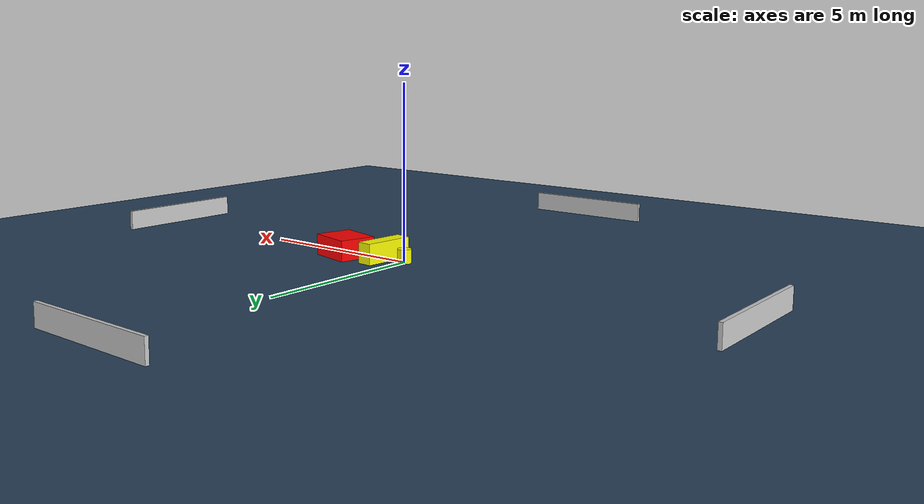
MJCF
<?xml version="1.0" ?>
<mujoco model="generated_environment">
  <option timestep="0.01" integrator="RK4" cone="elliptic"/>
  <default>
    <geom density="1"/>
  </default>
  <asset>
    <texture builtin="gradient" height="3072" name="skybox" rgb1="0.3 0.5 0.7" rgb2="0 0 0" type="skybox" width="512"/>
    <texture builtin="checker" height="300" name="groundplane" rgb1="0.2 0.3 0.4" rgb2="0.1 0.2 0.3" type="2d" width="300"/>
    <material name="groundplane" reflectance="0.2" texrepeat="5 5" texture="groundplane"/>
  </asset>
  <worldbody>
    <light dir="0 0 -1" directional="true" pos="0 0 1.5"/>
    <geom condim="3" friction="0.5 0.005 0.001" material="groundplane" name="floor" pos="0 0 0" size="0 0 0.05" type="plane"/>
    <body name="walls">
      <geom name="wall_1" condim="4" pos="-10.0 0.0 0.3" rgba="0.800000011920929 0.800000011920929 0.800000011920929 1.0" size="0.05 2.0 0.3" type="box"/>
      <geom name="wall_2" condim="4" pos="10.0 0.0 0.3" rgba="0.800000011920929 0.800000011920929 0.800000011920929 1.0" size="0.05 2.0 0.3" type="box"/>
      <geom name="wall_3" condim="4" pos="0.0 -10.0 0.3" rgba="0.800000011920929 0.800000011920929 0.800000011920929 1.0" size="2.0 0.05 0.3" type="box"/>
      <geom name="wall_4" condim="4" pos="0.0 10.0 0.3" rgba="0.800000011920929 0.800000011920929 0.800000011920929 1.0" size="2.0 0.05 0.3" type="box"/>
    </body>
    <body name="robot">
      <joint name="joint_x" type="slide" pos="0 0 0" axis="1 0 0"/>
      <joint name="joint_y" type="slide" pos="0 0 0" axis="0 1 0"/>
      <geom name="robot" type="cylinder" pos="0.0 0.0 0.2" size="0.2 0.2 0.0" mass="5.0" friction="1.0 0.005 0.0001" condim="4" rgba="1.0 1.0 0.0 1.0"/>
    </body>
    <body name="obstacle_1_movable">
      <geom name="obstacle_1_movable" condim="4" pos="0.6490983490224747 0.11374080857483877 0.3" euler="0 0 354.9754224061913" friction="0.0 0.005 0.001" rgba="1.0 1.0 0.0 1.0" size="0.22486986184007923 0.7664943821037777 0.3" type="box" mass="0.1"/>
      <joint type="free"/>
    </body>
    <body name="obstacle_2_static">
      <geom name="obstacle_2_static" condim="4" pos="1.8946236981054523 0.38256112439187745 0.3" euler="0 0 165.85324086122125" friction="0.0 0.005 0.001" rgba="1.0 0.0 0.0 1.0" size="0.6529226783215765 0.5488847288042564 0.3" type="box"/>
    </body>
  </worldbody>
  <actuator>
    <motor name="actuator_x" joint="joint_x" gear="1" ctrlrange="-1 1"/>
    <motor name="actuator_y" joint="joint_y" gear="1" ctrlrange="-1 1"/>
  </actuator>
</mujoco>
